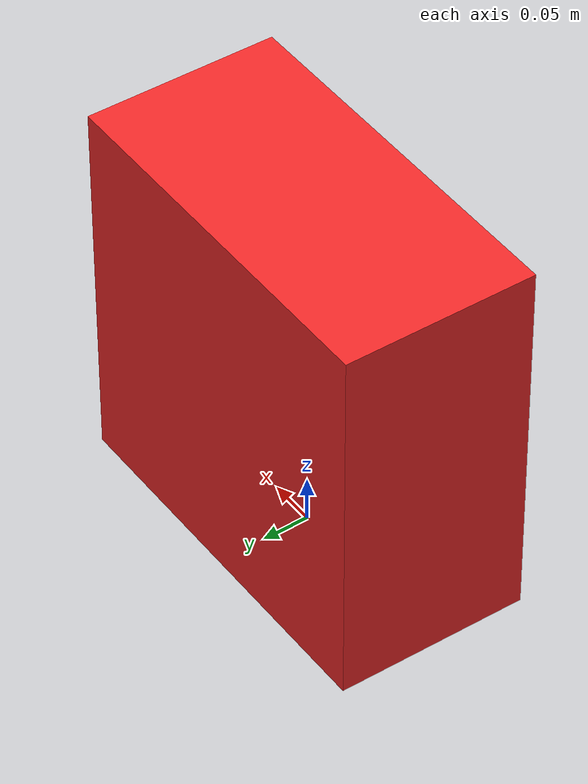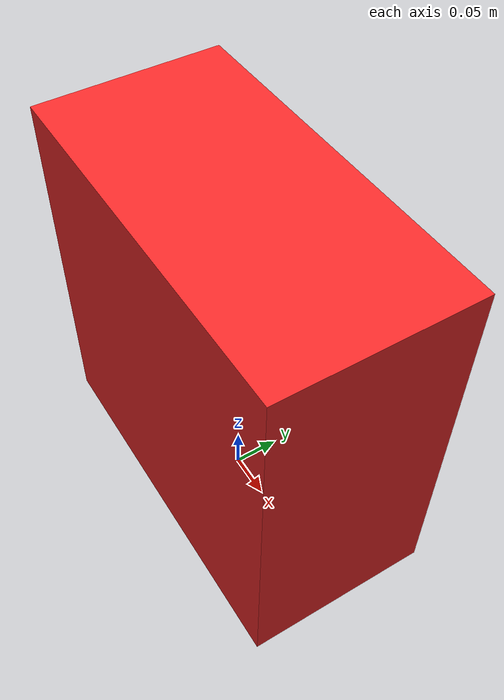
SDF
<?xml version='1.0'?>
<sdf version="1.4">
  <model name="box">
    <pose>0 0 0.2 0 0 0</pose>
    <static>true</static>
    <link name="link">
      <inertial>
        <mass>1.0</mass>
        <inertia> <!-- inertias are tricky to compute -->
          <!-- http://gazebosim.org/tutorials?tut=inertia&cat=build_robot -->
          <ixx>0.0166</ixx>       <!-- for a box: ixx = 0.083 * mass * (y*y + z*z) -->
          <ixy>0.0</ixy>
          <ixz>0.0</ixz>
          <iyy>0.02656</iyy>
          <iyz>0.0</iyz>
          <izz>0.0166</izz>
        </inertia>
      </inertial>
      <collision name="collision">
        <geometry>
          <box>
            <size>0.4 0.2 0.4</size>
          </box>
        </geometry>
      </collision>
      <visual name="visual">
        <geometry>
          <box>
            <size>0.4 0.2 0.4</size>
          </box>
        </geometry>
        <material>
          <ambient>0.937 0.161 0.161 1</ambient>
          <diffuse>0.937 0.161 0.161 1</diffuse>
          <specular>0 0 0 0</specular>
          <emissive>0 0 0 1</emissive>
        </material>
      </visual>
    </link>
  </model>
</sdf>
